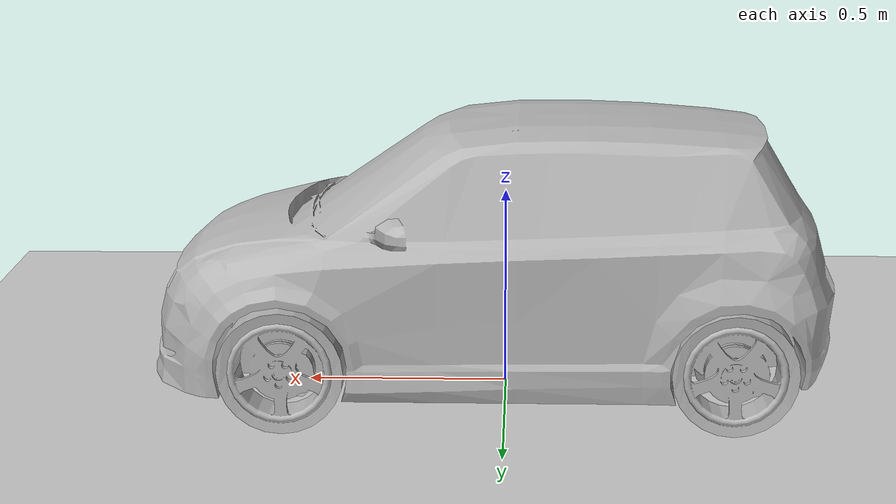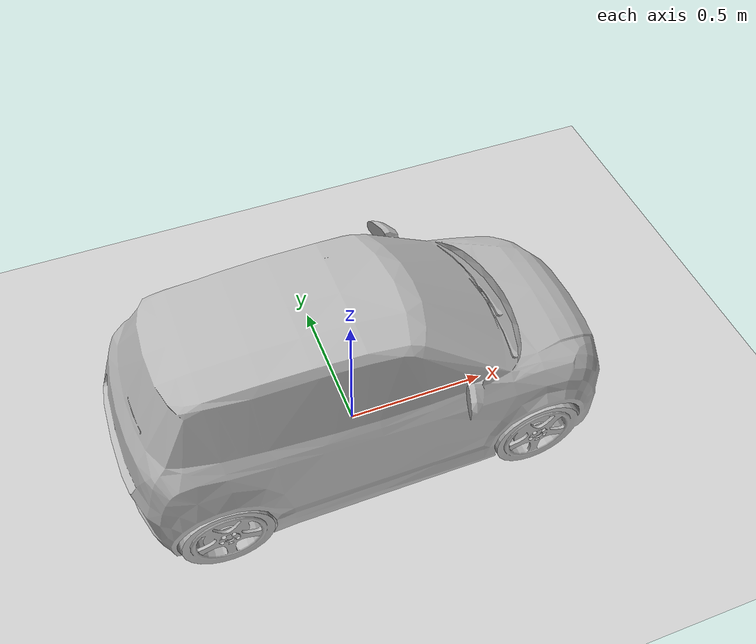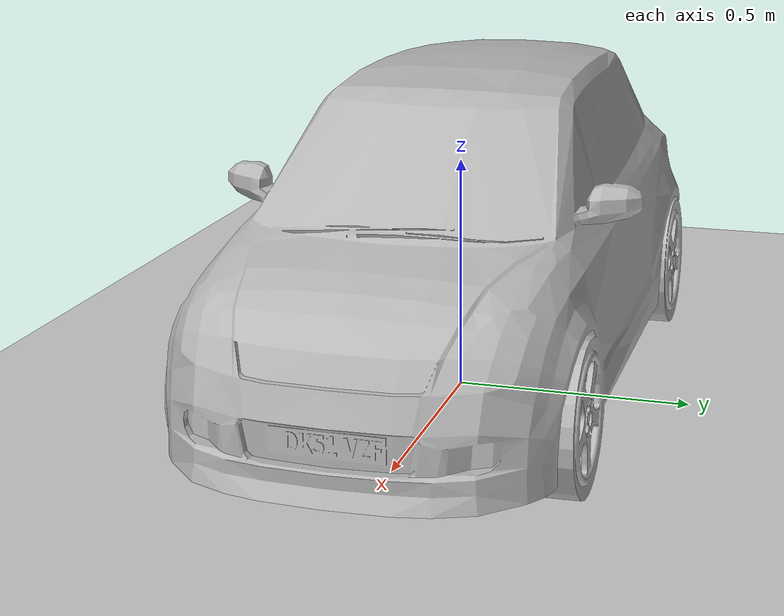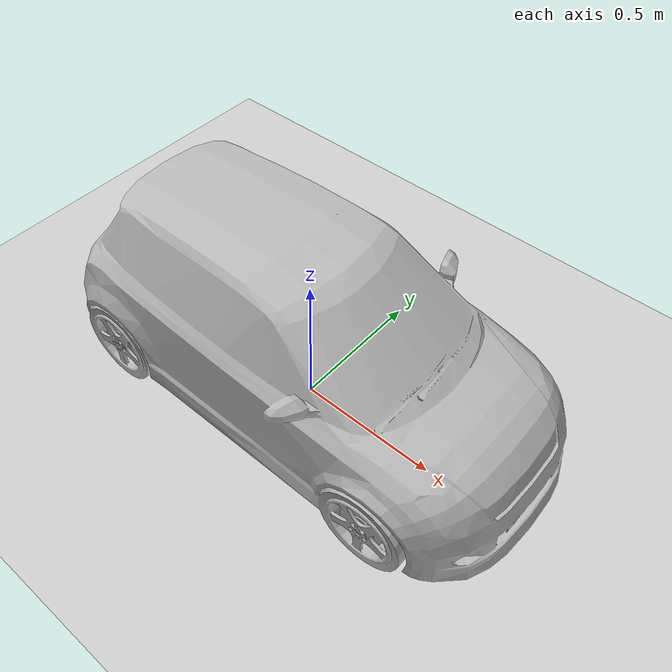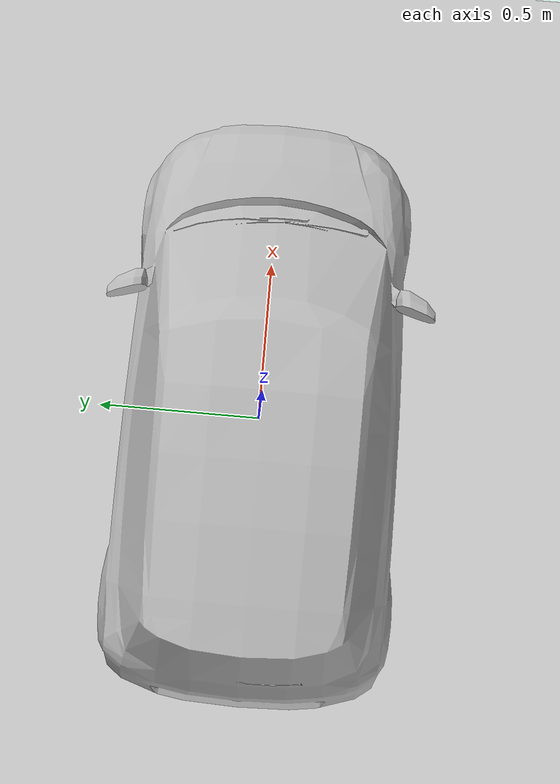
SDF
<sdf version='1.7'>
  <world name='default'>
    <scene>
      <ambient>0.7 0.7 0.7 1</ambient>
      <background>0.0 0.0 0.0 1</background>
      <shadows>0</shadows>
    </scene>
    <light name='user_directional_light_0' type='directional'>
      <pose>0 0 5 0 -0 0</pose>
      <diffuse>0.6 0.6 0.6 1</diffuse>
      <specular>0.4 0.4 0.4 1</specular>
      <direction>0 0. -1</direction>
      <attenuation>
        <range>20</range>
        <constant>1</constant>
        <linear>0.00</linear>
        <quadratic>0.00</quadratic>
      </attenuation>
      <cast_shadows>1</cast_shadows>
    </light>
    <light name='user_directional_light_1' type='directional'>
      <pose>-5 0 0.5 0 0 0</pose>
      <diffuse>0.6 0.6 0.6 1</diffuse>
      <specular>0.4 0.4 0.4 1</specular>
      <direction>1 0 0</direction>
      <attenuation>
        <range>20</range>
        <constant>1</constant>
        <linear>0.00</linear>
        <quadratic>0.00</quadratic>
      </attenuation>
      <cast_shadows>1</cast_shadows>
    </light>
    <light name='user_directional_light_2' type='directional'>
      <pose>5 0 0.5 0 0 0</pose>
      <diffuse>0.6 0.6 0.6 1</diffuse>
      <specular>0.4 0.4 0.4 1</specular>
      <direction>-1 0 0</direction>
      <attenuation>
        <range>20</range>
        <constant>1</constant>
        <linear>0.00</linear>
        <quadratic>0.00</quadratic>
      </attenuation>
      <cast_shadows>1</cast_shadows>
    </light>
    <light name='user_directional_light_3' type='directional'>
      <pose>0 5 0.5 0 -0 0</pose>
      <diffuse>0.6 0.6 0.6 1</diffuse>
      <specular>0.4 0.4 0.4 1</specular>
      <direction>0 -1 0</direction>
      <attenuation>
        <range>20</range>
        <constant>1</constant>
        <linear>0.00</linear>
        <quadratic>0.00</quadratic>
      </attenuation>
      <cast_shadows>1</cast_shadows>
    </light>
    <light name='user_directional_light_4' type='directional'>
      <pose>0 -5 0.5 0 -0 0</pose>
      <diffuse>0.6 0.6 0.6 1</diffuse>
      <specular>0.4 0.4 0.4 1</specular>
      <direction>0 1 0</direction>
      <attenuation>
        <range>20</range>
        <constant>1</constant>
        <linear>0.00</linear>
        <quadratic>0.00</quadratic>
      </attenuation>
      <cast_shadows>1</cast_shadows>
    </light>

    <model name='ground'>
      <include>
        <uri>model://ground</uri>
      </include>
      <static>1</static>
    </model>
    <model name='car'>
        <include>
            <uri>model://car</uri>
        </include>
        <static>1</static>
    </model>

  </world>

</sdf>

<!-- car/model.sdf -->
<sdf version="1.6">
  <model name="car">
    <static>true</static>
    <link name="link">
      <visual name="visual">
        <pose>0 0 0.18 1.570796 0 -1.570796</pose>
        <geometry>
          <mesh>
            <scale>2 2 2</scale>
            <uri>model://car/models/model_normalized.obj</uri>
          </mesh>
        </geometry>
      </visual>
    </link>
  </model>
</sdf>
